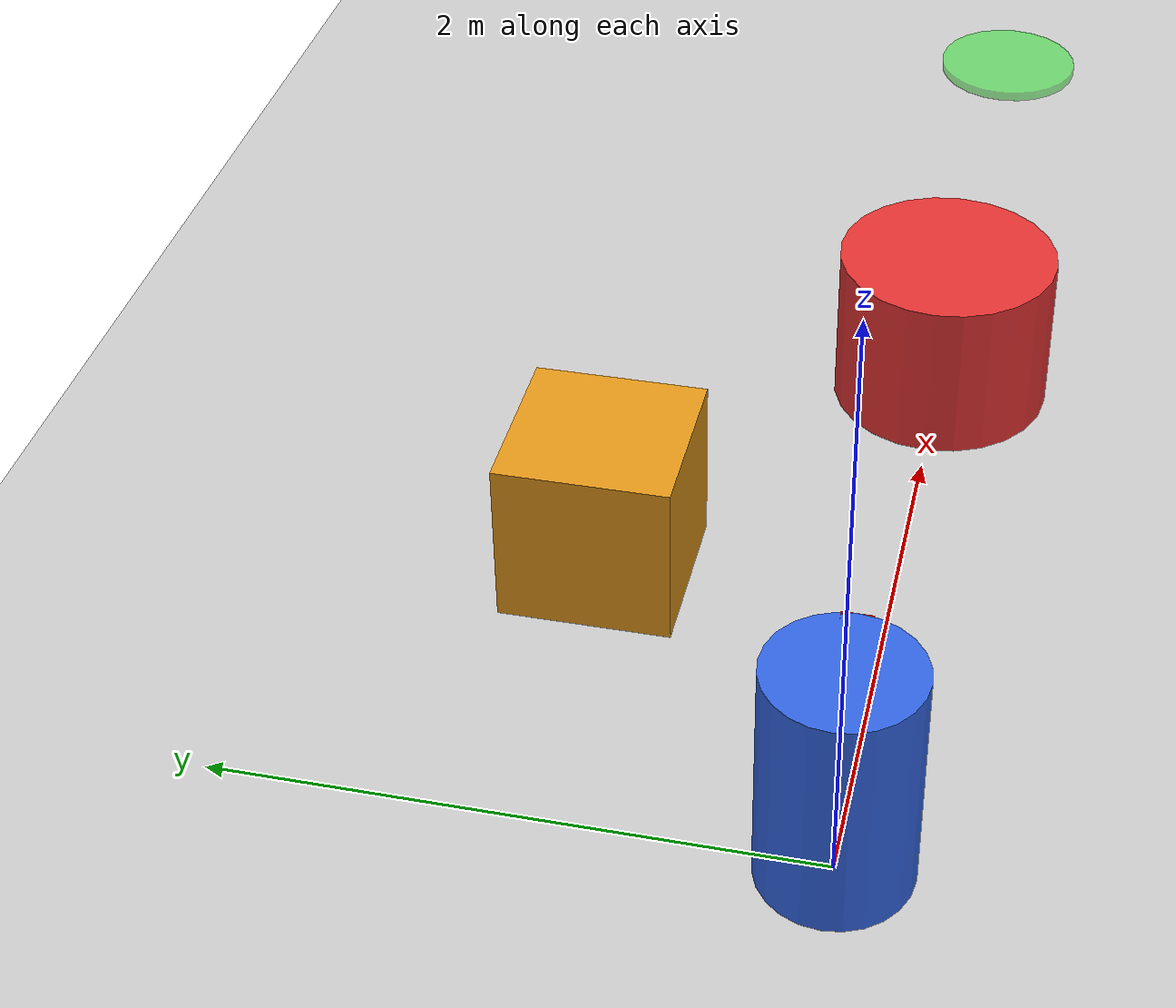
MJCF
<mujoco model="booster_k1_obstacle_nav">
  <option timestep="0.01" gravity="0 0 -9.81"/>

  <default>
    <geom friction="1 0.5 0.5" density="500"/>
  </default>

  <worldbody>
    <light diffuse=".8 .8 .8" pos="0 0 5" dir="0 0 -1"/>
    <geom name="floor" type="plane" size="10 10 0.1" rgba="0.8 0.8 0.8 1"/>

    <body name="k1_base" pos="0 0 0.4">
      <joint name="jx" type="slide" axis="1 0 0" damping="2"/>
      <joint name="jy" type="slide" axis="0 1 0" damping="2"/>
      <joint name="jz" type="hinge" axis="0 0 1" damping="1"/>
      <geom name="k1_torso" type="cylinder" size="0.25 0.4" rgba="0.2 0.4 0.9 1" mass="20"/>
      <geom name="k1_heading_marker" type="box" pos="0.2 0 0.35" size="0.05 0.05 0.05" rgba="1 0 0 1"/>
    </body>

    <!-- Static obstacles -->
    <body name="obstacle_1" pos="2.5 0 0.3">
      <geom name="obs1" type="cylinder" size="0.4 0.3" rgba="0.9 0.2 0.2 1"/>
    </body>
    <body name="obstacle_2" pos="1.2 1.0 0.3">
      <geom name="obs2" type="box" size="0.3 0.3 0.3" rgba="0.9 0.6 0.1 1"/>
    </body>

    <!-- Goal marker (visual only, non-colliding) -->
    <body name="goal_marker" pos="5 0 0.05">
      <geom name="goal" type="cylinder" size="0.3 0.02" rgba="0.1 0.9 0.1 0.5" contype="0" conaffinity="0"/>
    </body>
  </worldbody>

  <actuator>
    <velocity name="act_vx" joint="jx" kv="100" ctrlrange="-1 1"/>
    <velocity name="act_vy" joint="jy" kv="100" ctrlrange="-1 1"/>
    <velocity name="act_wz" joint="jz" kv="60" ctrlrange="-2 2"/>
  </actuator>
</mujoco>
